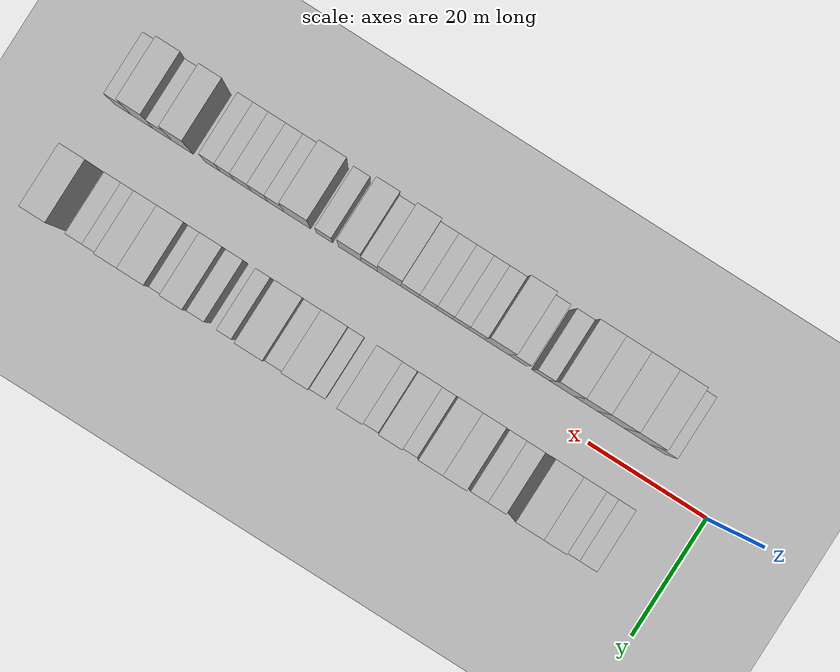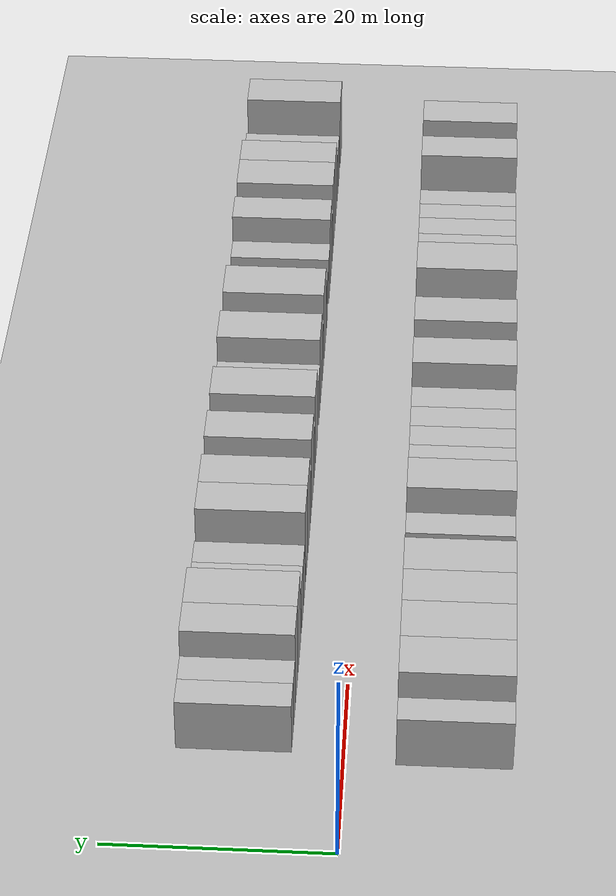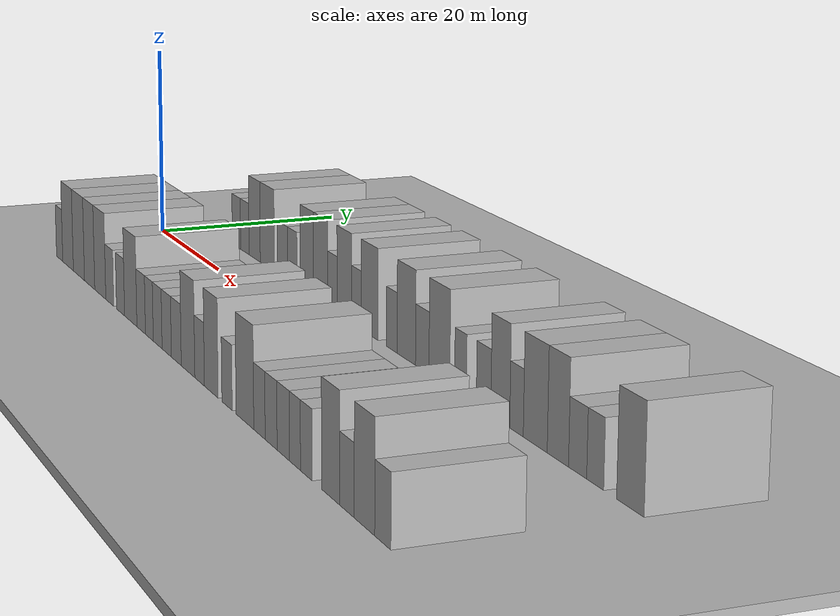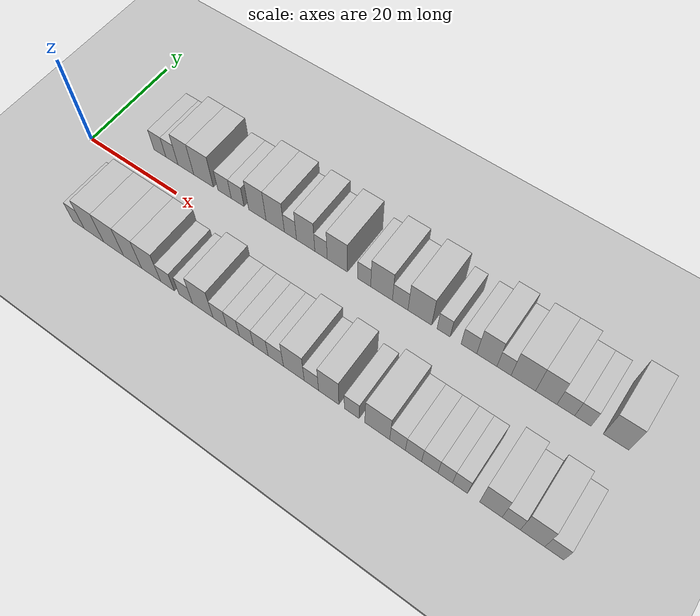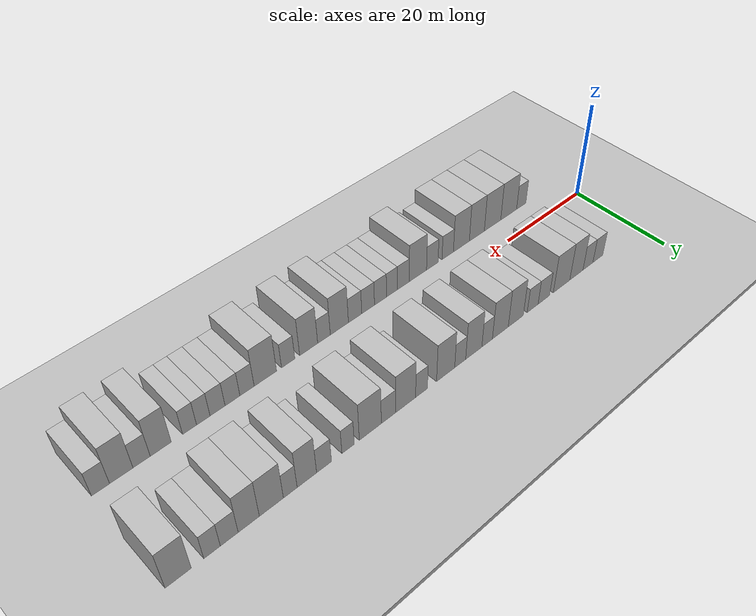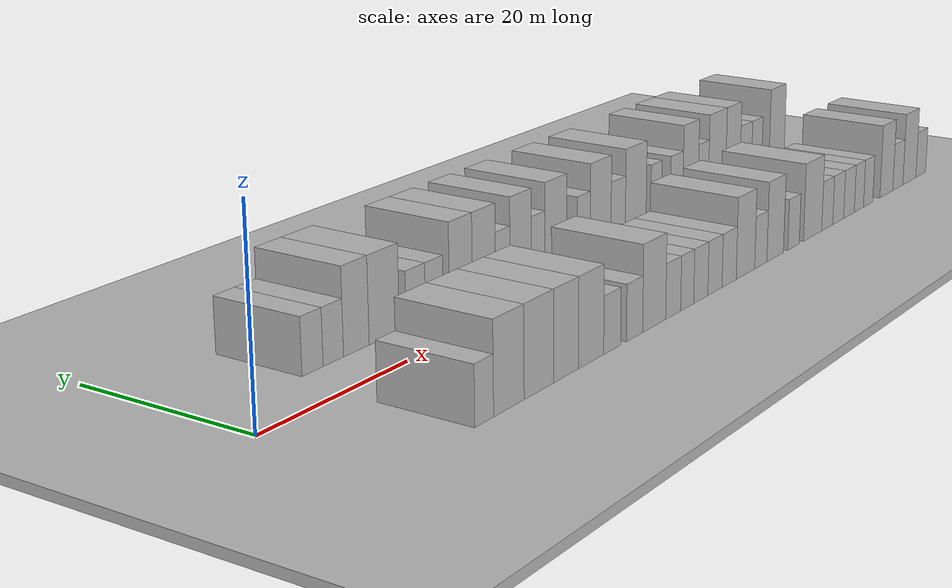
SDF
<sdf version="1.6">
 <world name="default">
  <include><name>ground_plane_1</name><uri>model://HANNAS_ground_plane</uri></include>
  <include>
   <name>ground_plane_2</name>
   <uri>model://HANNAS_ground_plane</uri>
   <pose>100 0 0  0 0 0</pose>
  </include>
  <model name="building_1">
   <static>1</static>
   <pose>12.4131 9.5000 0 0.000000 0.000000 1.570796</pose>
   <link name="link">
    <pose>0 0 3.00 0 0 0</pose>
    <collision name="collision"><geometry><box><size>10.0000 2.8262 6.0000</size></box></geometry></collision>
    <visual name="visual">
     <cast_shadows>0</cast_shadows>
     <geometry><box><size>10.0000 2.8262 6.0000</size></box></geometry>
     <material>
      <script>
       <uri>model://HANNAS_wall/materials/scripts</uri>
       <uri>model://HANNAS_wall/materials/textures</uri>
       <name>vrc/HANNAS_wall</name>
      </script>
     </material>
    </visual>
   </link>
  </model>
  <model name="building_2">
   <static>1</static>
   <pose>15.2293 9.5000 0 0.000000 0.000000 1.570796</pose>
   <link name="link">
    <pose>0 0 3.00 0 0 0</pose>
    <collision name="collision"><geometry><box><size>10.0000 2.8062 6.0000</size></box></geometry></collision>
    <visual name="visual">
     <cast_shadows>0</cast_shadows>
     <geometry><box><size>10.0000 2.8062 6.0000</size></box></geometry>
     <material>
      <script>
       <uri>model://HANNAS_wall/materials/scripts</uri>
       <uri>model://HANNAS_wall/materials/textures</uri>
       <name>vrc/HANNAS_wall</name>
      </script>
     </material>
    </visual>
   </link>
  </model>
  <model name="building_3">
   <static>1</static>
   <pose>18.4482 9.5000 0 0.000000 0.000000 1.570796</pose>
   <link name="link">
    <pose>0 0 4.50 0 0 0</pose>
    <collision name="collision"><geometry><box><size>10.0000 3.6314 9.0000</size></box></geometry></collision>
    <visual name="visual">
     <cast_shadows>0</cast_shadows>
     <geometry><box><size>10.0000 3.6314 9.0000</size></box></geometry>
     <material>
      <script>
       <uri>model://HANNAS_wall/materials/scripts</uri>
       <uri>model://HANNAS_wall/materials/textures</uri>
       <name>vrc/HANNAS_wall</name>
      </script>
     </material>
    </visual>
   </link>
  </model>
  <model name="building_4">
   <static>1</static>
   <pose>22.4896 9.5000 0 0.000000 0.000000 1.570796</pose>
   <link name="link">
    <pose>0 0 4.50 0 0 0</pose>
    <collision name="collision"><geometry><box><size>10.0000 4.4515 9.0000</size></box></geometry></collision>
    <visual name="visual">
     <cast_shadows>0</cast_shadows>
     <geometry><box><size>10.0000 4.4515 9.0000</size></box></geometry>
     <material>
      <script>
       <uri>model://HANNAS_wall/materials/scripts</uri>
       <uri>model://HANNAS_wall/materials/textures</uri>
       <name>vrc/HANNAS_wall</name>
      </script>
     </material>
    </visual>
   </link>
  </model>
  <model name="building_5">
   <static>1</static>
   <pose>27.2118 9.5000 0 0.000000 0.000000 1.570796</pose>
   <link name="link">
    <pose>0 0 3.00 0 0 0</pose>
    <collision name="collision"><geometry><box><size>10.0000 2.9929 6.0000</size></box></geometry></collision>
    <visual name="visual">
     <cast_shadows>0</cast_shadows>
     <geometry><box><size>10.0000 2.9929 6.0000</size></box></geometry>
     <material>
      <script>
       <uri>model://HANNAS_wall/materials/scripts</uri>
       <uri>model://HANNAS_wall/materials/textures</uri>
       <name>vrc/HANNAS_wall</name>
      </script>
     </material>
    </visual>
   </link>
  </model>
  <model name="building_6">
   <static>1</static>
   <pose>30.1102 9.5000 0 0.000000 0.000000 1.570796</pose>
   <link name="link">
    <pose>0 0 3.00 0 0 0</pose>
    <collision name="collision"><geometry><box><size>10.0000 2.8040 6.0000</size></box></geometry></collision>
    <visual name="visual">
     <cast_shadows>0</cast_shadows>
     <geometry><box><size>10.0000 2.8040 6.0000</size></box></geometry>
     <material>
      <script>
       <uri>model://HANNAS_wall/materials/scripts</uri>
       <uri>model://HANNAS_wall/materials/textures</uri>
       <name>vrc/HANNAS_wall</name>
      </script>
     </material>
    </visual>
   </link>
  </model>
  <model name="building_7">
   <static>1</static>
   <pose>34.3932 9.5000 0 0.000000 0.000000 1.570796</pose>
   <link name="link">
    <pose>0 0 4.50 0 0 0</pose>
    <collision name="collision"><geometry><box><size>10.0000 3.7620 9.0000</size></box></geometry></collision>
    <visual name="visual">
     <cast_shadows>0</cast_shadows>
     <geometry><box><size>10.0000 3.7620 9.0000</size></box></geometry>
     <material>
      <script>
       <uri>model://HANNAS_wall/materials/scripts</uri>
       <uri>model://HANNAS_wall/materials/textures</uri>
       <name>vrc/HANNAS_wall</name>
      </script>
     </material>
    </visual>
   </link>
  </model>
  <model name="building_8">
   <static>1</static>
   <pose>38.2200 9.5000 0 0.000000 0.000000 1.570796</pose>
   <link name="link">
    <pose>0 0 4.50 0 0 0</pose>
    <collision name="collision"><geometry><box><size>10.0000 3.8916 9.0000</size></box></geometry></collision>
    <visual name="visual">
     <cast_shadows>0</cast_shadows>
     <geometry><box><size>10.0000 3.8916 9.0000</size></box></geometry>
     <material>
      <script>
       <uri>model://HANNAS_wall/materials/scripts</uri>
       <uri>model://HANNAS_wall/materials/textures</uri>
       <name>vrc/HANNAS_wall</name>
      </script>
     </material>
    </visual>
   </link>
  </model>
  <model name="building_9">
   <static>1</static>
   <pose>41.4322 9.5000 0 0.000000 0.000000 1.570796</pose>
   <link name="link">
    <pose>0 0 3.00 0 0 0</pose>
    <collision name="collision"><geometry><box><size>10.0000 2.5330 6.0000</size></box></geometry></collision>
    <visual name="visual">
     <cast_shadows>0</cast_shadows>
     <geometry><box><size>10.0000 2.5330 6.0000</size></box></geometry>
     <material>
      <script>
       <uri>model://HANNAS_wall/materials/scripts</uri>
       <uri>model://HANNAS_wall/materials/textures</uri>
       <name>vrc/HANNAS_wall</name>
      </script>
     </material>
    </visual>
   </link>
  </model>
  <model name="building_10">
   <static>1</static>
   <pose>44.6003 9.5000 0 0.000000 0.000000 1.570796</pose>
   <link name="link">
    <pose>0 0 4.50 0 0 0</pose>
    <collision name="collision"><geometry><box><size>10.0000 3.8032 9.0000</size></box></geometry></collision>
    <visual name="visual">
     <cast_shadows>0</cast_shadows>
     <geometry><box><size>10.0000 3.8032 9.0000</size></box></geometry>
     <material>
      <script>
       <uri>model://HANNAS_wall/materials/scripts</uri>
       <uri>model://HANNAS_wall/materials/textures</uri>
       <name>vrc/HANNAS_wall</name>
      </script>
     </material>
    </visual>
   </link>
  </model>
  <model name="building_11">
   <static>1</static>
   <pose>47.7659 9.5000 0 0.000000 0.000000 1.570796</pose>
   <link name="link">
    <pose>0 0 3.00 0 0 0</pose>
    <collision name="collision"><geometry><box><size>10.0000 2.5279 6.0000</size></box></geometry></collision>
    <visual name="visual">
     <cast_shadows>0</cast_shadows>
     <geometry><box><size>10.0000 2.5279 6.0000</size></box></geometry>
     <material>
      <script>
       <uri>model://HANNAS_wall/materials/scripts</uri>
       <uri>model://HANNAS_wall/materials/textures</uri>
       <name>vrc/HANNAS_wall</name>
      </script>
     </material>
    </visual>
   </link>
  </model>
  <model name="building_12">
   <static>1</static>
   <pose>51.0742 9.5000 0 0.000000 0.000000 1.570796</pose>
   <link name="link">
    <pose>0 0 4.50 0 0 0</pose>
    <collision name="collision"><geometry><box><size>10.0000 4.0886 9.0000</size></box></geometry></collision>
    <visual name="visual">
     <cast_shadows>0</cast_shadows>
     <geometry><box><size>10.0000 4.0886 9.0000</size></box></geometry>
     <material>
      <script>
       <uri>model://HANNAS_wall/materials/scripts</uri>
       <uri>model://HANNAS_wall/materials/textures</uri>
       <name>vrc/HANNAS_wall</name>
      </script>
     </material>
    </visual>
   </link>
  </model>
  <model name="building_13">
   <static>1</static>
   <pose>56.4108 9.5000 0 0.000000 0.000000 1.570796</pose>
   <link name="link">
    <pose>0 0 3.00 0 0 0</pose>
    <collision name="collision"><geometry><box><size>10.0000 2.5846 6.0000</size></box></geometry></collision>
    <visual name="visual">
     <cast_shadows>0</cast_shadows>
     <geometry><box><size>10.0000 2.5846 6.0000</size></box></geometry>
     <material>
      <script>
       <uri>model://HANNAS_wall/materials/scripts</uri>
       <uri>model://HANNAS_wall/materials/textures</uri>
       <name>vrc/HANNAS_wall</name>
      </script>
     </material>
    </visual>
   </link>
  </model>
  <model name="building_14">
   <static>1</static>
   <pose>59.8139 9.5000 0 0.000000 0.000000 1.570796</pose>
   <link name="link">
    <pose>0 0 4.50 0 0 0</pose>
    <collision name="collision"><geometry><box><size>10.0000 4.2217 9.0000</size></box></geometry></collision>
    <visual name="visual">
     <cast_shadows>0</cast_shadows>
     <geometry><box><size>10.0000 4.2217 9.0000</size></box></geometry>
     <material>
      <script>
       <uri>model://HANNAS_wall/materials/scripts</uri>
       <uri>model://HANNAS_wall/materials/textures</uri>
       <name>vrc/HANNAS_wall</name>
      </script>
     </material>
    </visual>
   </link>
  </model>
  <model name="building_15">
   <static>1</static>
   <pose>63.4169 9.5000 0 0.000000 0.000000 1.570796</pose>
   <link name="link">
    <pose>0 0 3.00 0 0 0</pose>
    <collision name="collision"><geometry><box><size>10.0000 2.9843 6.0000</size></box></geometry></collision>
    <visual name="visual">
     <cast_shadows>0</cast_shadows>
     <geometry><box><size>10.0000 2.9843 6.0000</size></box></geometry>
     <material>
      <script>
       <uri>model://HANNAS_wall/materials/scripts</uri>
       <uri>model://HANNAS_wall/materials/textures</uri>
       <name>vrc/HANNAS_wall</name>
      </script>
     </material>
    </visual>
   </link>
  </model>
  <model name="building_16">
   <static>1</static>
   <pose>67.1395 9.5000 0 0.000000 0.000000 1.570796</pose>
   <link name="link">
    <pose>0 0 4.50 0 0 0</pose>
    <collision name="collision"><geometry><box><size>10.0000 4.4609 9.0000</size></box></geometry></collision>
    <visual name="visual">
     <cast_shadows>0</cast_shadows>
     <geometry><box><size>10.0000 4.4609 9.0000</size></box></geometry>
     <material>
      <script>
       <uri>model://HANNAS_wall/materials/scripts</uri>
       <uri>model://HANNAS_wall/materials/textures</uri>
       <name>vrc/HANNAS_wall</name>
      </script>
     </material>
    </visual>
   </link>
  </model>
  <model name="building_17">
   <static>1</static>
   <pose>71.5821 9.5000 0 0.000000 0.000000 1.570796</pose>
   <link name="link">
    <pose>0 0 3.00 0 0 0</pose>
    <collision name="collision"><geometry><box><size>10.0000 2.4243 6.0000</size></box></geometry></collision>
    <visual name="visual">
     <cast_shadows>0</cast_shadows>
     <geometry><box><size>10.0000 2.4243 6.0000</size></box></geometry>
     <material>
      <script>
       <uri>model://HANNAS_wall/materials/scripts</uri>
       <uri>model://HANNAS_wall/materials/textures</uri>
       <name>vrc/HANNAS_wall</name>
      </script>
     </material>
    </visual>
   </link>
  </model>
  <model name="building_18">
   <static>1</static>
   <pose>76.2130 9.5000 0 0.000000 0.000000 1.570796</pose>
   <link name="link">
    <pose>0 0 3.00 0 0 0</pose>
    <collision name="collision"><geometry><box><size>10.0000 2.8375 6.0000</size></box></geometry></collision>
    <visual name="visual">
     <cast_shadows>0</cast_shadows>
     <geometry><box><size>10.0000 2.8375 6.0000</size></box></geometry>
     <material>
      <script>
       <uri>model://HANNAS_wall/materials/scripts</uri>
       <uri>model://HANNAS_wall/materials/textures</uri>
       <name>vrc/HANNAS_wall</name>
      </script>
     </material>
    </visual>
   </link>
  </model>
  <model name="building_19">
   <static>1</static>
   <pose>79.4336 9.5000 0 0.000000 0.000000 1.570796</pose>
   <link name="link">
    <pose>0 0 4.50 0 0 0</pose>
    <collision name="collision"><geometry><box><size>10.0000 3.6037 9.0000</size></box></geometry></collision>
    <visual name="visual">
     <cast_shadows>0</cast_shadows>
     <geometry><box><size>10.0000 3.6037 9.0000</size></box></geometry>
     <material>
      <script>
       <uri>model://HANNAS_wall/materials/scripts</uri>
       <uri>model://HANNAS_wall/materials/textures</uri>
       <name>vrc/HANNAS_wall</name>
      </script>
     </material>
    </visual>
   </link>
  </model>
  <model name="building_20">
   <static>1</static>
   <pose>82.4817 9.5000 0 0.000000 0.000000 1.570796</pose>
   <link name="link">
    <pose>0 0 3.00 0 0 0</pose>
    <collision name="collision"><geometry><box><size>10.0000 2.4925 6.0000</size></box></geometry></collision>
    <visual name="visual">
     <cast_shadows>0</cast_shadows>
     <geometry><box><size>10.0000 2.4925 6.0000</size></box></geometry>
     <material>
      <script>
       <uri>model://HANNAS_wall/materials/scripts</uri>
       <uri>model://HANNAS_wall/materials/textures</uri>
       <name>vrc/HANNAS_wall</name>
      </script>
     </material>
    </visual>
   </link>
  </model>
  <model name="building_21">
   <static>1</static>
   <pose>85.8562 9.5000 0 0.000000 0.000000 1.570796</pose>
   <link name="link">
    <pose>0 0 4.50 0 0 0</pose>
    <collision name="collision"><geometry><box><size>10.0000 4.2565 9.0000</size></box></geometry></collision>
    <visual name="visual">
     <cast_shadows>0</cast_shadows>
     <geometry><box><size>10.0000 4.2565 9.0000</size></box></geometry>
     <material>
      <script>
       <uri>model://HANNAS_wall/materials/scripts</uri>
       <uri>model://HANNAS_wall/materials/textures</uri>
       <name>vrc/HANNAS_wall</name>
      </script>
     </material>
    </visual>
   </link>
  </model>
  <model name="building_22">
   <static>1</static>
   <pose>89.8014 9.5000 0 0.000000 0.000000 1.570796</pose>
   <link name="link">
    <pose>0 0 4.50 0 0 0</pose>
    <collision name="collision"><geometry><box><size>10.0000 3.6340 9.0000</size></box></geometry></collision>
    <visual name="visual">
     <cast_shadows>0</cast_shadows>
     <geometry><box><size>10.0000 3.6340 9.0000</size></box></geometry>
     <material>
      <script>
       <uri>model://HANNAS_wall/materials/scripts</uri>
       <uri>model://HANNAS_wall/materials/textures</uri>
       <name>vrc/HANNAS_wall</name>
      </script>
     </material>
    </visual>
   </link>
  </model>
  <model name="building_23">
   <static>1</static>
   <pose>93.1143 9.5000 0 0.000000 0.000000 1.570796</pose>
   <link name="link">
    <pose>0 0 3.00 0 0 0</pose>
    <collision name="collision"><geometry><box><size>10.0000 2.9918 6.0000</size></box></geometry></collision>
    <visual name="visual">
     <cast_shadows>0</cast_shadows>
     <geometry><box><size>10.0000 2.9918 6.0000</size></box></geometry>
     <material>
      <script>
       <uri>model://HANNAS_wall/materials/scripts</uri>
       <uri>model://HANNAS_wall/materials/textures</uri>
       <name>vrc/HANNAS_wall</name>
      </script>
     </material>
    </visual>
   </link>
  </model>
  <model name="building_24">
   <static>1</static>
   <pose>95.9690 9.5000 0 0.000000 0.000000 1.570796</pose>
   <link name="link">
    <pose>0 0 3.00 0 0 0</pose>
    <collision name="collision"><geometry><box><size>10.0000 2.7175 6.0000</size></box></geometry></collision>
    <visual name="visual">
     <cast_shadows>0</cast_shadows>
     <geometry><box><size>10.0000 2.7175 6.0000</size></box></geometry>
     <material>
      <script>
       <uri>model://HANNAS_wall/materials/scripts</uri>
       <uri>model://HANNAS_wall/materials/textures</uri>
       <name>vrc/HANNAS_wall</name>
      </script>
     </material>
    </visual>
   </link>
  </model>
  <model name="building_25">
   <static>1</static>
   <pose>101.3992 9.5000 0 0.000000 0.000000 1.570796</pose>
   <link name="link">
    <pose>0 0 4.50 0 0 0</pose>
    <collision name="collision"><geometry><box><size>10.0000 4.1428 9.0000</size></box></geometry></collision>
    <visual name="visual">
     <cast_shadows>0</cast_shadows>
     <geometry><box><size>10.0000 4.1428 9.0000</size></box></geometry>
     <material>
      <script>
       <uri>model://HANNAS_wall/materials/scripts</uri>
       <uri>model://HANNAS_wall/materials/textures</uri>
       <name>vrc/HANNAS_wall</name>
      </script>
     </material>
    </visual>
   </link>
  </model>
  <model name="building_53">
   <static>1</static>
   <pose>11.3274 -9.5000 0 0.000000 0.000000 1.570796</pose>
   <link name="link">
    <pose>0 0 3.00 0 0 0</pose>
    <collision name="collision"><geometry><box><size>10.0000 2.6547 6.0000</size></box></geometry></collision>
    <visual name="visual">
     <cast_shadows>0</cast_shadows>
     <geometry><box><size>10.0000 2.6547 6.0000</size></box></geometry>
     <material>
      <script>
       <uri>model://HANNAS_wall/materials/scripts</uri>
       <uri>model://HANNAS_wall/materials/textures</uri>
       <name>vrc/HANNAS_wall</name>
      </script>
     </material>
    </visual>
   </link>
  </model>
  <model name="building_54">
   <static>1</static>
   <pose>14.8735 -9.5000 0 0.000000 0.000000 1.570796</pose>
   <link name="link">
    <pose>0 0 4.50 0 0 0</pose>
    <collision name="collision"><geometry><box><size>10.0000 4.4376 9.0000</size></box></geometry></collision>
    <visual name="visual">
     <cast_shadows>0</cast_shadows>
     <geometry><box><size>10.0000 4.4376 9.0000</size></box></geometry>
     <material>
      <script>
       <uri>model://HANNAS_wall/materials/scripts</uri>
       <uri>model://HANNAS_wall/materials/textures</uri>
       <name>vrc/HANNAS_wall</name>
      </script>
     </material>
    </visual>
   </link>
  </model>
  <model name="building_55">
   <static>1</static>
   <pose>19.3356 -9.5000 0 0.000000 0.000000 1.570796</pose>
   <link name="link">
    <pose>0 0 4.50 0 0 0</pose>
    <collision name="collision"><geometry><box><size>10.0000 4.4865 9.0000</size></box></geometry></collision>
    <visual name="visual">
     <cast_shadows>0</cast_shadows>
     <geometry><box><size>10.0000 4.4865 9.0000</size></box></geometry>
     <material>
      <script>
       <uri>model://HANNAS_wall/materials/scripts</uri>
       <uri>model://HANNAS_wall/materials/textures</uri>
       <name>vrc/HANNAS_wall</name>
      </script>
     </material>
    </visual>
   </link>
  </model>
  <model name="building_56">
   <static>1</static>
   <pose>23.5786 -9.5000 0 0.000000 0.000000 1.570796</pose>
   <link name="link">
    <pose>0 0 4.50 0 0 0</pose>
    <collision name="collision"><geometry><box><size>10.0000 3.9994 9.0000</size></box></geometry></collision>
    <visual name="visual">
     <cast_shadows>0</cast_shadows>
     <geometry><box><size>10.0000 3.9994 9.0000</size></box></geometry>
     <material>
      <script>
       <uri>model://HANNAS_wall/materials/scripts</uri>
       <uri>model://HANNAS_wall/materials/textures</uri>
       <name>vrc/HANNAS_wall</name>
      </script>
     </material>
    </visual>
   </link>
  </model>
  <model name="building_57">
   <static>1</static>
   <pose>27.6593 -9.5000 0 0.000000 0.000000 1.570796</pose>
   <link name="link">
    <pose>0 0 4.50 0 0 0</pose>
    <collision name="collision"><geometry><box><size>10.0000 4.1622 9.0000</size></box></geometry></collision>
    <visual name="visual">
     <cast_shadows>0</cast_shadows>
     <geometry><box><size>10.0000 4.1622 9.0000</size></box></geometry>
     <material>
      <script>
       <uri>model://HANNAS_wall/materials/scripts</uri>
       <uri>model://HANNAS_wall/materials/textures</uri>
       <name>vrc/HANNAS_wall</name>
      </script>
     </material>
    </visual>
   </link>
  </model>
  <model name="building_58">
   <static>1</static>
   <pose>31.1941 -9.5000 0 0.000000 0.000000 1.570796</pose>
   <link name="link">
    <pose>0 0 3.00 0 0 0</pose>
    <collision name="collision"><geometry><box><size>10.0000 2.9074 6.0000</size></box></geometry></collision>
    <visual name="visual">
     <cast_shadows>0</cast_shadows>
     <geometry><box><size>10.0000 2.9074 6.0000</size></box></geometry>
     <material>
      <script>
       <uri>model://HANNAS_wall/materials/scripts</uri>
       <uri>model://HANNAS_wall/materials/textures</uri>
       <name>vrc/HANNAS_wall</name>
      </script>
     </material>
    </visual>
   </link>
  </model>
  <model name="building_59">
   <static>1</static>
   <pose>35.0804 -9.5000 0 0.000000 0.000000 1.570796</pose>
   <link name="link">
    <pose>0 0 3.00 0 0 0</pose>
    <collision name="collision"><geometry><box><size>10.0000 2.8652 6.0000</size></box></geometry></collision>
    <visual name="visual">
     <cast_shadows>0</cast_shadows>
     <geometry><box><size>10.0000 2.8652 6.0000</size></box></geometry>
     <material>
      <script>
       <uri>model://HANNAS_wall/materials/scripts</uri>
       <uri>model://HANNAS_wall/materials/textures</uri>
       <name>vrc/HANNAS_wall</name>
      </script>
     </material>
    </visual>
   </link>
  </model>
  <model name="building_60">
   <static>1</static>
   <pose>38.6266 -9.5000 0 0.000000 0.000000 1.570796</pose>
   <link name="link">
    <pose>0 0 4.50 0 0 0</pose>
    <collision name="collision"><geometry><box><size>10.0000 4.2273 9.0000</size></box></geometry></collision>
    <visual name="visual">
     <cast_shadows>0</cast_shadows>
     <geometry><box><size>10.0000 4.2273 9.0000</size></box></geometry>
     <material>
      <script>
       <uri>model://HANNAS_wall/materials/scripts</uri>
       <uri>model://HANNAS_wall/materials/textures</uri>
       <name>vrc/HANNAS_wall</name>
      </script>
     </material>
    </visual>
   </link>
  </model>
  <model name="building_61">
   <static>1</static>
   <pose>42.1610 -9.5000 0 0.000000 0.000000 1.570796</pose>
   <link name="link">
    <pose>0 0 3.00 0 0 0</pose>
    <collision name="collision"><geometry><box><size>10.0000 2.8416 6.0000</size></box></geometry></collision>
    <visual name="visual">
     <cast_shadows>0</cast_shadows>
     <geometry><box><size>10.0000 2.8416 6.0000</size></box></geometry>
     <material>
      <script>
       <uri>model://HANNAS_wall/materials/scripts</uri>
       <uri>model://HANNAS_wall/materials/textures</uri>
       <name>vrc/HANNAS_wall</name>
      </script>
     </material>
    </visual>
   </link>
  </model>
  <model name="building_62">
   <static>1</static>
   <pose>44.8583 -9.5000 0 0.000000 0.000000 1.570796</pose>
   <link name="link">
    <pose>0 0 3.00 0 0 0</pose>
    <collision name="collision"><geometry><box><size>10.0000 2.5530 6.0000</size></box></geometry></collision>
    <visual name="visual">
     <cast_shadows>0</cast_shadows>
     <geometry><box><size>10.0000 2.5530 6.0000</size></box></geometry>
     <material>
      <script>
       <uri>model://HANNAS_wall/materials/scripts</uri>
       <uri>model://HANNAS_wall/materials/textures</uri>
       <name>vrc/HANNAS_wall</name>
      </script>
     </material>
    </visual>
   </link>
  </model>
  <model name="building_63">
   <static>1</static>
   <pose>47.5326 -9.5000 0 0.000000 0.000000 1.570796</pose>
   <link name="link">
    <pose>0 0 3.00 0 0 0</pose>
    <collision name="collision"><geometry><box><size>10.0000 2.7956 6.0000</size></box></geometry></collision>
    <visual name="visual">
     <cast_shadows>0</cast_shadows>
     <geometry><box><size>10.0000 2.7956 6.0000</size></box></geometry>
     <material>
      <script>
       <uri>model://HANNAS_wall/materials/scripts</uri>
       <uri>model://HANNAS_wall/materials/textures</uri>
       <name>vrc/HANNAS_wall</name>
      </script>
     </material>
    </visual>
   </link>
  </model>
  <model name="building_64">
   <static>1</static>
   <pose>50.3752 -9.5000 0 0.000000 0.000000 1.570796</pose>
   <link name="link">
    <pose>0 0 3.00 0 0 0</pose>
    <collision name="collision"><geometry><box><size>10.0000 2.8894 6.0000</size></box></geometry></collision>
    <visual name="visual">
     <cast_shadows>0</cast_shadows>
     <geometry><box><size>10.0000 2.8894 6.0000</size></box></geometry>
     <material>
      <script>
       <uri>model://HANNAS_wall/materials/scripts</uri>
       <uri>model://HANNAS_wall/materials/textures</uri>
       <name>vrc/HANNAS_wall</name>
      </script>
     </material>
    </visual>
   </link>
  </model>
  <model name="building_65">
   <static>1</static>
   <pose>53.3100 -9.5000 0 0.000000 0.000000 1.570796</pose>
   <link name="link">
    <pose>0 0 3.00 0 0 0</pose>
    <collision name="collision"><geometry><box><size>10.0000 2.9803 6.0000</size></box></geometry></collision>
    <visual name="visual">
     <cast_shadows>0</cast_shadows>
     <geometry><box><size>10.0000 2.9803 6.0000</size></box></geometry>
     <material>
      <script>
       <uri>model://HANNAS_wall/materials/scripts</uri>
       <uri>model://HANNAS_wall/materials/textures</uri>
       <name>vrc/HANNAS_wall</name>
      </script>
     </material>
    </visual>
   </link>
  </model>
  <model name="building_66">
   <static>1</static>
   <pose>56.7829 -9.5000 0 0.000000 0.000000 1.570796</pose>
   <link name="link">
    <pose>0 0 4.50 0 0 0</pose>
    <collision name="collision"><geometry><box><size>10.0000 3.9654 9.0000</size></box></geometry></collision>
    <visual name="visual">
     <cast_shadows>0</cast_shadows>
     <geometry><box><size>10.0000 3.9654 9.0000</size></box></geometry>
     <material>
      <script>
       <uri>model://HANNAS_wall/materials/scripts</uri>
       <uri>model://HANNAS_wall/materials/textures</uri>
       <name>vrc/HANNAS_wall</name>
      </script>
     </material>
    </visual>
   </link>
  </model>
  <model name="building_67">
   <static>1</static>
   <pose>60.1193 -9.5000 0 0.000000 0.000000 1.570796</pose>
   <link name="link">
    <pose>0 0 3.00 0 0 0</pose>
    <collision name="collision"><geometry><box><size>10.0000 2.7075 6.0000</size></box></geometry></collision>
    <visual name="visual">
     <cast_shadows>0</cast_shadows>
     <geometry><box><size>10.0000 2.7075 6.0000</size></box></geometry>
     <material>
      <script>
       <uri>model://HANNAS_wall/materials/scripts</uri>
       <uri>model://HANNAS_wall/materials/textures</uri>
       <name>vrc/HANNAS_wall</name>
      </script>
     </material>
    </visual>
   </link>
  </model>
  <model name="building_68">
   <static>1</static>
   <pose>63.3605 -9.5000 0 0.000000 0.000000 1.570796</pose>
   <link name="link">
    <pose>0 0 4.50 0 0 0</pose>
    <collision name="collision"><geometry><box><size>10.0000 3.7749 9.0000</size></box></geometry></collision>
    <visual name="visual">
     <cast_shadows>0</cast_shadows>
     <geometry><box><size>10.0000 3.7749 9.0000</size></box></geometry>
     <material>
      <script>
       <uri>model://HANNAS_wall/materials/scripts</uri>
       <uri>model://HANNAS_wall/materials/textures</uri>
       <name>vrc/HANNAS_wall</name>
      </script>
     </material>
    </visual>
   </link>
  </model>
  <model name="building_69">
   <static>1</static>
   <pose>67.6049 -9.5000 0 0.000000 0.000000 1.570796</pose>
   <link name="link">
    <pose>0 0 3.00 0 0 0</pose>
    <collision name="collision"><geometry><box><size>10.0000 2.7139 6.0000</size></box></geometry></collision>
    <visual name="visual">
     <cast_shadows>0</cast_shadows>
     <geometry><box><size>10.0000 2.7139 6.0000</size></box></geometry>
     <material>
      <script>
       <uri>model://HANNAS_wall/materials/scripts</uri>
       <uri>model://HANNAS_wall/materials/textures</uri>
       <name>vrc/HANNAS_wall</name>
      </script>
     </material>
    </visual>
   </link>
  </model>
  <model name="building_70">
   <static>1</static>
   <pose>72.1859 -9.5000 0 0.000000 0.000000 1.570796</pose>
   <link name="link">
    <pose>0 0 4.50 0 0 0</pose>
    <collision name="collision"><geometry><box><size>10.0000 4.4480 9.0000</size></box></geometry></collision>
    <visual name="visual">
     <cast_shadows>0</cast_shadows>
     <geometry><box><size>10.0000 4.4480 9.0000</size></box></geometry>
     <material>
      <script>
       <uri>model://HANNAS_wall/materials/scripts</uri>
       <uri>model://HANNAS_wall/materials/textures</uri>
       <name>vrc/HANNAS_wall</name>
      </script>
     </material>
    </visual>
   </link>
  </model>
  <model name="building_71">
   <static>1</static>
   <pose>75.7892 -9.5000 0 0.000000 0.000000 1.570796</pose>
   <link name="link">
    <pose>0 0 3.00 0 0 0</pose>
    <collision name="collision"><geometry><box><size>10.0000 2.7587 6.0000</size></box></geometry></collision>
    <visual name="visual">
     <cast_shadows>0</cast_shadows>
     <geometry><box><size>10.0000 2.7587 6.0000</size></box></geometry>
     <material>
      <script>
       <uri>model://HANNAS_wall/materials/scripts</uri>
       <uri>model://HANNAS_wall/materials/textures</uri>
       <name>vrc/HANNAS_wall</name>
      </script>
     </material>
    </visual>
   </link>
  </model>
  <model name="building_72">
   <static>1</static>
   <pose>78.5743 -9.5000 0 0.000000 0.000000 1.570796</pose>
   <link name="link">
    <pose>0 0 3.00 0 0 0</pose>
    <collision name="collision"><geometry><box><size>10.0000 2.8114 6.0000</size></box></geometry></collision>
    <visual name="visual">
     <cast_shadows>0</cast_shadows>
     <geometry><box><size>10.0000 2.8114 6.0000</size></box></geometry>
     <material>
      <script>
       <uri>model://HANNAS_wall/materials/scripts</uri>
       <uri>model://HANNAS_wall/materials/textures</uri>
       <name>vrc/HANNAS_wall</name>
      </script>
     </material>
    </visual>
   </link>
  </model>
  <model name="building_73">
   <static>1</static>
   <pose>81.3822 -9.5000 0 0.000000 0.000000 1.570796</pose>
   <link name="link">
    <pose>0 0 3.00 0 0 0</pose>
    <collision name="collision"><geometry><box><size>10.0000 2.8044 6.0000</size></box></geometry></collision>
    <visual name="visual">
     <cast_shadows>0</cast_shadows>
     <geometry><box><size>10.0000 2.8044 6.0000</size></box></geometry>
     <material>
      <script>
       <uri>model://HANNAS_wall/materials/scripts</uri>
       <uri>model://HANNAS_wall/materials/textures</uri>
       <name>vrc/HANNAS_wall</name>
      </script>
     </material>
    </visual>
   </link>
  </model>
  <model name="building_74">
   <static>1</static>
   <pose>84.0190 -9.5000 0 0.000000 0.000000 1.570796</pose>
   <link name="link">
    <pose>0 0 3.00 0 0 0</pose>
    <collision name="collision"><geometry><box><size>10.0000 2.4692 6.0000</size></box></geometry></collision>
    <visual name="visual">
     <cast_shadows>0</cast_shadows>
     <geometry><box><size>10.0000 2.4692 6.0000</size></box></geometry>
     <material>
      <script>
       <uri>model://HANNAS_wall/materials/scripts</uri>
       <uri>model://HANNAS_wall/materials/textures</uri>
       <name>vrc/HANNAS_wall</name>
      </script>
     </material>
    </visual>
   </link>
  </model>
  <model name="building_75">
   <static>1</static>
   <pose>86.5100 -9.5000 0 0.000000 0.000000 1.570796</pose>
   <link name="link">
    <pose>0 0 3.00 0 0 0</pose>
    <collision name="collision"><geometry><box><size>10.0000 2.5128 6.0000</size></box></geometry></collision>
    <visual name="visual">
     <cast_shadows>0</cast_shadows>
     <geometry><box><size>10.0000 2.5128 6.0000</size></box></geometry>
     <material>
      <script>
       <uri>model://HANNAS_wall/materials/scripts</uri>
       <uri>model://HANNAS_wall/materials/textures</uri>
       <name>vrc/HANNAS_wall</name>
      </script>
     </material>
    </visual>
   </link>
  </model>
  <model name="building_76">
   <static>1</static>
   <pose>91.5967 -9.5000 0 0.000000 0.000000 1.570796</pose>
   <link name="link">
    <pose>0 0 4.50 0 0 0</pose>
    <collision name="collision"><geometry><box><size>10.0000 3.6606 9.0000</size></box></geometry></collision>
    <visual name="visual">
     <cast_shadows>0</cast_shadows>
     <geometry><box><size>10.0000 3.6606 9.0000</size></box></geometry>
     <material>
      <script>
       <uri>model://HANNAS_wall/materials/scripts</uri>
       <uri>model://HANNAS_wall/materials/textures</uri>
       <name>vrc/HANNAS_wall</name>
      </script>
     </material>
    </visual>
   </link>
  </model>
  <model name="building_77">
   <static>1</static>
   <pose>94.8859 -9.5000 0 0.000000 0.000000 1.570796</pose>
   <link name="link">
    <pose>0 0 3.00 0 0 0</pose>
    <collision name="collision"><geometry><box><size>10.0000 2.9178 6.0000</size></box></geometry></collision>
    <visual name="visual">
     <cast_shadows>0</cast_shadows>
     <geometry><box><size>10.0000 2.9178 6.0000</size></box></geometry>
     <material>
      <script>
       <uri>model://HANNAS_wall/materials/scripts</uri>
       <uri>model://HANNAS_wall/materials/textures</uri>
       <name>vrc/HANNAS_wall</name>
      </script>
     </material>
    </visual>
   </link>
  </model>
  <model name="building_78">
   <static>1</static>
   <pose>98.2826 -9.5000 0 0.000000 0.000000 1.570796</pose>
   <link name="link">
    <pose>0 0 4.50 0 0 0</pose>
    <collision name="collision"><geometry><box><size>10.0000 3.8757 9.0000</size></box></geometry></collision>
    <visual name="visual">
     <cast_shadows>0</cast_shadows>
     <geometry><box><size>10.0000 3.8757 9.0000</size></box></geometry>
     <material>
      <script>
       <uri>model://HANNAS_wall/materials/scripts</uri>
       <uri>model://HANNAS_wall/materials/textures</uri>
       <name>vrc/HANNAS_wall</name>
      </script>
     </material>
    </visual>
   </link>
  </model>
  <model name="building_79">
   <static>1</static>
   <pose>101.6932 -9.5000 0 0.000000 0.000000 1.570796</pose>
   <link name="link">
    <pose>0 0 3.00 0 0 0</pose>
    <collision name="collision"><geometry><box><size>10.0000 2.9454 6.0000</size></box></geometry></collision>
    <visual name="visual">
     <cast_shadows>0</cast_shadows>
     <geometry><box><size>10.0000 2.9454 6.0000</size></box></geometry>
     <material>
      <script>
       <uri>model://HANNAS_wall/materials/scripts</uri>
       <uri>model://HANNAS_wall/materials/textures</uri>
       <name>vrc/HANNAS_wall</name>
      </script>
     </material>
    </visual>
   </link>
  </model>
 </world>
</sdf>
